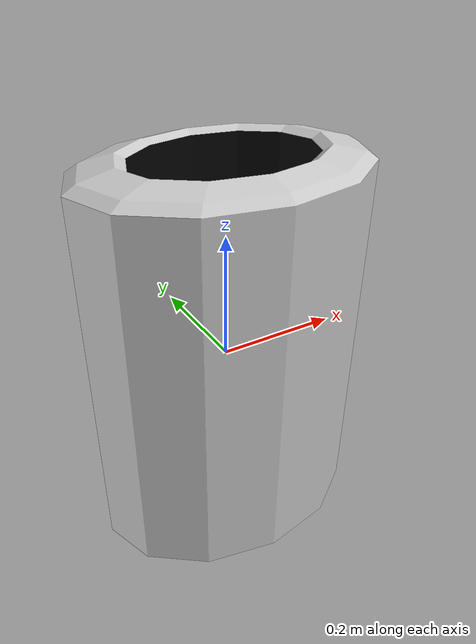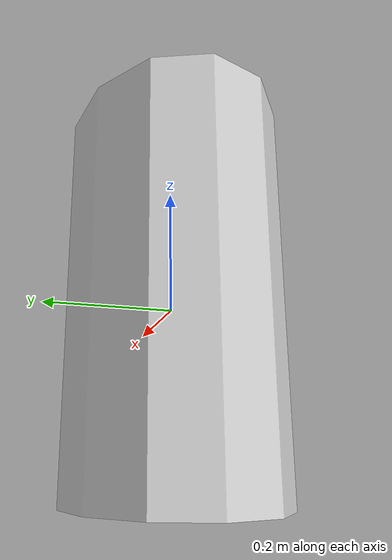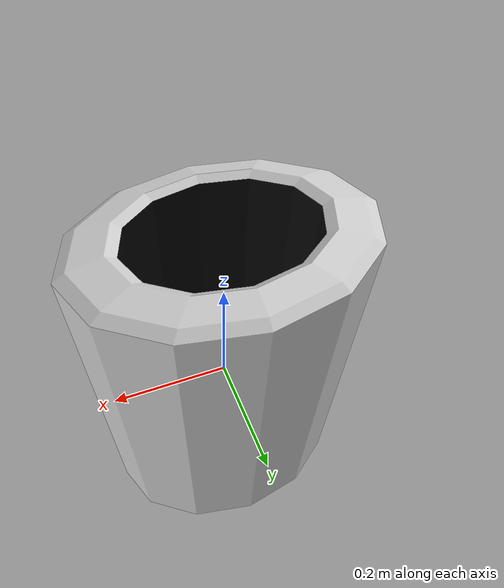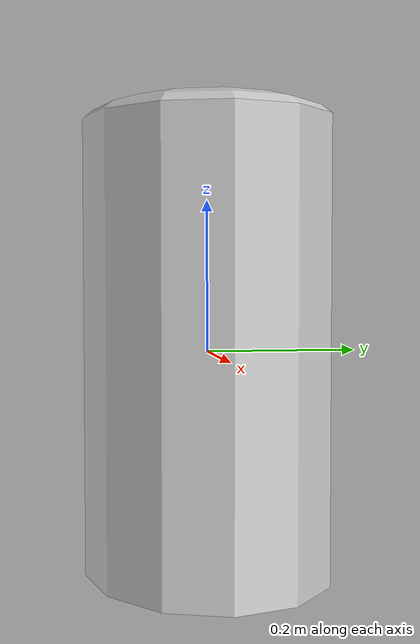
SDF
<?xml version='1.0'?>
<sdf version='1.5'>
    <model name="dump">
        <pose>0 0 0 0 0 0</pose>
        <static>false</static>
        <link name='model_body'>
            <visual name="visual">
                <geometry>
                    <mesh>
                        <uri>model://robert_gazebo/meshes/dump_visual.dae</uri>
                        <scale>1 1 1</scale>
                    </mesh>
                </geometry>
            </visual>

            <collision name="collision">
                <geometry>
                    <mesh>
                        <uri>model://robert_gazebo/meshes/dump_collision.dae</uri>
                        <scale>1 1 1</scale>
                    </mesh>
                </geometry>
            </collision>

            <inertial>
                <pose> 0 0 0 0 0 0</pose>
                <inertia>
                    <ixx>0.12</ixx>
                    <ixy>0</ixy>
                    <ixz>0</ixz>
                    <iyy>0.14</iyy>
                    <iyz>0</iyz>
                    <izz>0.06</izz>
                </inertia>
                <mass>3.0</mass>
            </inertial>
        </link>
    </model>
</sdf>
